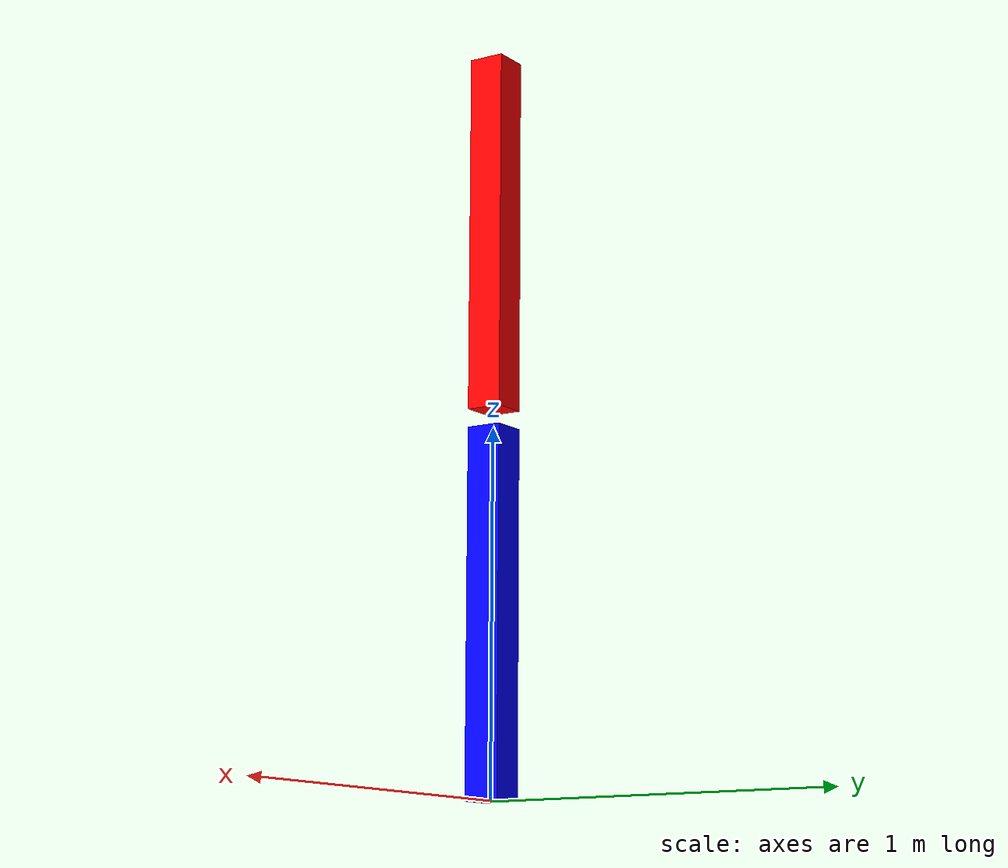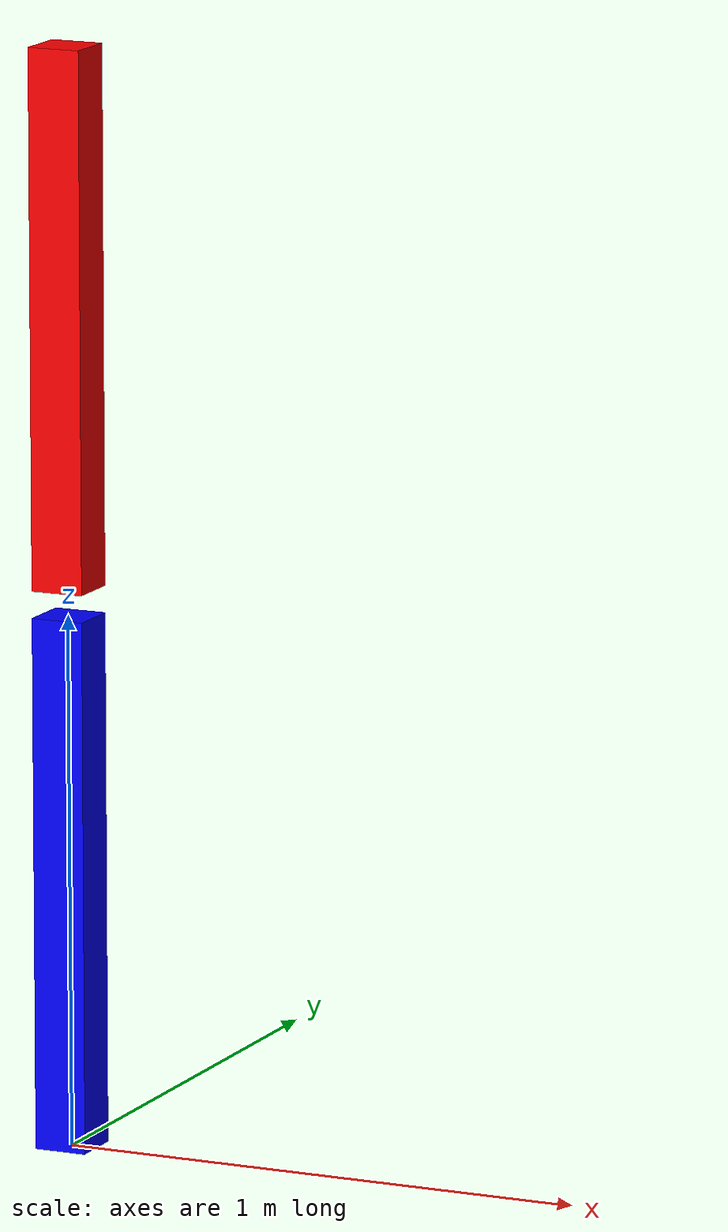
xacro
<?xml version="1.0"?>
<robot name="marv" xmlns:xacro="http://www.ros.org/wiki/xacro">

    <!-- Define some reusable macros for length, width, and mass -->
    <xacro:property name="link1_length" value="1.0"/>
    <xacro:property name="link2_length" value="1.0"/>
    <xacro:property name="link_width" value="0.1"/>
    <xacro:property name="mass" value="1.0"/>
    <xacro:property name="gap" value="0.05"/>  <!-- Offset to prevent touching -->

    <!-- Link 1 -->
    <link name="link1">
        <visual>
            <geometry>
                <box size="${link_width} ${link_width} ${link1_length}"/>
            </geometry>
            <origin xyz="0 0 ${link1_length/2}"/>
            <material name="blue">
                <color rgba="0 0 1 1"/>
            </material>
        </visual>
        <collision>
            <geometry>
                <box size="${link_width} ${link_width} ${link1_length}"/>
            </geometry>
            <origin xyz="0 0 ${link1_length/2}"/>
        </collision>
        <inertial>
            <mass value="${mass}"/>
            <origin xyz="0 0 ${link1_length/2}"/>
            <inertia ixx="0.01" ixy="0" ixz="0" iyy="0.01" iyz="0" izz="0.01"/>
        </inertial>
    </link>

    <!-- Joint -->
    <joint name="joint1" type="revolute">
        <parent link="link1"/>
        <child link="link2"/>
        <origin xyz="0 0 ${link1_length + gap}"/>  <!-- Offset added -->
        <axis xyz="1 0 0"/>
        <limit effort="10.0" lower="-3.14" upper="3.14" velocity="1.0"/>
        <dynamics damping="0.5" friction="0.1"/>
    </joint>

    <!-- Link 2 -->
    <link name="link2">
        <visual>
            <geometry>
                <box size="${link_width} ${link_width} ${link2_length}"/>
            </geometry>
            <origin xyz="0 0 ${link2_length/2}"/>
            <material name="red">
                <color rgba="1 0 0 1"/>
            </material>
        </visual>
        <collision>
            <geometry>
                <box size="${link_width} ${link_width} ${link2_length}"/>
            </geometry>
            <origin xyz="0 0 ${link2_length/2}"/>
        </collision>
        <inertial>
            <mass value="${mass}"/>
            <origin xyz="0 0 ${link2_length/2}"/>
            <inertia ixx="0.01" ixy="0" ixz="0" iyy="0.01" iyz="0" izz="0.01"/>
        </inertial>
    </link>

</robot>
